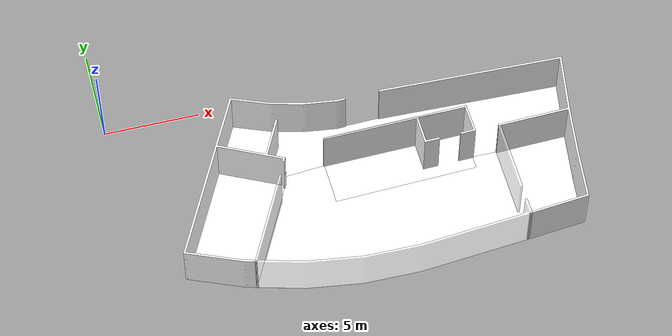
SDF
<?xml version='1.0' encoding='utf-8'?>
<sdf version="1.7">
  <model name="building_L1">
    <static>true</static>
    <link name="floor_1">
      <visual name="visual">
        <geometry>
          <mesh>
            <uri>model://building_L1/meshes/floor_1.obj</uri>
          </mesh>
        </geometry>
        <material>
          <diffuse>1.0 1.0 1.0</diffuse>
          <specular>0.1 0.1 0.1</specular>
          <pbr>
            <metal>
              <metalness>0.0</metalness>
              <albedo_map>model://building_L1/meshes/blue_linoleum_high_contrast.png</albedo_map>
            </metal>
          </pbr>
          <script>
            <uri>model://building_L1/meshes/</uri>
            <name>floor_1_Diffuse</name>
          </script>
        </material>
      </visual>
      <collision name="collision">
        <geometry>
          <mesh>
            <uri>model://building_L1/meshes/floor_1.obj</uri>
          </mesh>
        </geometry>
        <surface>
          <contact>
            <collide_bitmask>0x01</collide_bitmask>
          </contact>
        </surface>
      </collision>
    </link>
    <link name="floor_2">
      <visual name="visual">
        <geometry>
          <mesh>
            <uri>model://building_L1/meshes/floor_2.obj</uri>
          </mesh>
        </geometry>
        <material>
          <diffuse>1.0 1.0 1.0</diffuse>
          <specular>0.1 0.1 0.1</specular>
          <pbr>
            <metal>
              <metalness>0.0</metalness>
              <albedo_map>model://building_L1/meshes/concrete2.png</albedo_map>
            </metal>
          </pbr>
          <script>
            <uri>model://building_L1/meshes/</uri>
            <name>floor_2_Diffuse</name>
          </script>
        </material>
      </visual>
      <collision name="collision">
        <geometry>
          <mesh>
            <uri>model://building_L1/meshes/floor_2.obj</uri>
          </mesh>
        </geometry>
        <surface>
          <contact>
            <collide_bitmask>0x01</collide_bitmask>
          </contact>
        </surface>
      </collision>
    </link>
    <link name="floor_3">
      <visual name="visual">
        <geometry>
          <mesh>
            <uri>model://building_L1/meshes/floor_3.obj</uri>
          </mesh>
        </geometry>
        <material>
          <diffuse>1.0 1.0 1.0</diffuse>
          <specular>0.1 0.1 0.1</specular>
          <pbr>
            <metal>
              <metalness>0.0</metalness>
              <albedo_map>model://building_L1/meshes/blue_linoleum_high_contrast.png</albedo_map>
            </metal>
          </pbr>
          <script>
            <uri>model://building_L1/meshes/</uri>
            <name>floor_3_Diffuse</name>
          </script>
        </material>
      </visual>
      <collision name="collision">
        <geometry>
          <mesh>
            <uri>model://building_L1/meshes/floor_3.obj</uri>
          </mesh>
        </geometry>
        <surface>
          <contact>
            <collide_bitmask>0x01</collide_bitmask>
          </contact>
        </surface>
      </collision>
    </link>
    <link name="floor_4">
      <visual name="visual">
        <geometry>
          <mesh>
            <uri>model://building_L1/meshes/floor_4.obj</uri>
          </mesh>
        </geometry>
        <material>
          <diffuse>1.0 1.0 1.0</diffuse>
          <specular>0.1 0.1 0.1</specular>
          <pbr>
            <metal>
              <metalness>0.0</metalness>
              <albedo_map>model://building_L1/meshes/black_concrete.png</albedo_map>
            </metal>
          </pbr>
          <script>
            <uri>model://building_L1/meshes/</uri>
            <name>floor_4_Diffuse</name>
          </script>
        </material>
      </visual>
      <collision name="collision">
        <geometry>
          <mesh>
            <uri>model://building_L1/meshes/floor_4.obj</uri>
          </mesh>
        </geometry>
        <surface>
          <contact>
            <collide_bitmask>0x01</collide_bitmask>
          </contact>
        </surface>
      </collision>
    </link>
    <link name="wall_1">
      <visual name="wall_1">
        <geometry>
          <mesh>
            <uri>model://building_L1/meshes/wall_1.obj</uri>
          </mesh>
        </geometry>
        <transparency>0.0</transparency>
        <material>
          <diffuse>1.0 1.0 1.0</diffuse>
          <specular>0.1 0.1 0.1</specular>
          <pbr>
            <metal>
              <metalness>0.0</metalness>
              <albedo_map>model://building_L1/meshes/wall_white.png</albedo_map>
            </metal>
          </pbr>
          <script>
            <uri>model://building_L1/meshes/</uri>
            <name>wall_1_Diffuse</name>
          </script>
        </material>
      </visual>
      <collision name="collision">
        <geometry>
          <mesh>
            <uri>model://building_L1/meshes/wall_1.obj</uri>
          </mesh>
        </geometry>
        <surface>
          <contact>
            <collide_bitmask>0x01</collide_bitmask>
          </contact>
        </surface>
      </collision>
      <pose>2.2104525034268714 -11.594893332298748 0 0 0 0</pose>
    </link>
    <link name="wall_2">
      <visual name="wall_2">
        <geometry>
          <mesh>
            <uri>model://building_L1/meshes/wall_2.obj</uri>
          </mesh>
        </geometry>
        <transparency>0.5</transparency>
        <material>
          <diffuse>1.0 1.0 1.0</diffuse>
          <specular>0.1 0.1 0.1</specular>
          <pbr>
            <metal>
              <metalness>0.0</metalness>
              <albedo_map>model://building_L1/meshes/wall_white.png</albedo_map>
            </metal>
          </pbr>
          <script>
            <uri>model://building_L1/meshes/</uri>
            <name>wall_2_Diffuse</name>
          </script>
        </material>
      </visual>
      <collision name="collision">
        <geometry>
          <mesh>
            <uri>model://building_L1/meshes/wall_2.obj</uri>
          </mesh>
        </geometry>
        <surface>
          <contact>
            <collide_bitmask>0x01</collide_bitmask>
          </contact>
        </surface>
      </collision>
      <pose>5.505273654870084 -12.057908109495912 0 0 0 0</pose>
    </link>
    <link name="wall_3">
      <visual name="wall_3">
        <geometry>
          <mesh>
            <uri>model://building_L1/meshes/wall_3.obj</uri>
          </mesh>
        </geometry>
        <transparency>0.19999999999999996</transparency>
        <material>
          <diffuse>1.0 1.0 1.0</diffuse>
          <specular>0.1 0.1 0.1</specular>
          <pbr>
            <metal>
              <metalness>0.0</metalness>
              <albedo_map>model://building_L1/meshes/wall_white.png</albedo_map>
            </metal>
          </pbr>
          <script>
            <uri>model://building_L1/meshes/</uri>
            <name>wall_3_Diffuse</name>
          </script>
        </material>
      </visual>
      <collision name="collision">
        <geometry>
          <mesh>
            <uri>model://building_L1/meshes/wall_3.obj</uri>
          </mesh>
        </geometry>
        <surface>
          <contact>
            <collide_bitmask>0x01</collide_bitmask>
          </contact>
        </surface>
      </collision>
      <pose>5.499658357842799 -10.921386983607634 0 0 0 0</pose>
    </link>
    <link name="wall_4">
      <visual name="wall_4">
        <geometry>
          <mesh>
            <uri>model://building_L1/meshes/wall_4.obj</uri>
          </mesh>
        </geometry>
        <transparency>0.0</transparency>
        <material>
          <diffuse>1.0 1.0 1.0</diffuse>
          <specular>0.1 0.1 0.1</specular>
          <pbr>
            <metal>
              <metalness>0.0</metalness>
              <albedo_map>model://building_L1/meshes/blue_linoleum_high_contrast.png</albedo_map>
            </metal>
          </pbr>
          <script>
            <uri>model://building_L1/meshes/</uri>
            <name>wall_4_Diffuse</name>
          </script>
        </material>
      </visual>
      <collision name="collision">
        <geometry>
          <mesh>
            <uri>model://building_L1/meshes/wall_4.obj</uri>
          </mesh>
        </geometry>
        <surface>
          <contact>
            <collide_bitmask>0x01</collide_bitmask>
          </contact>
        </surface>
      </collision>
      <pose>10.549150932467981 -4.759113568297709 0 0 0 0</pose>
    </link>
  </model>
</sdf>
